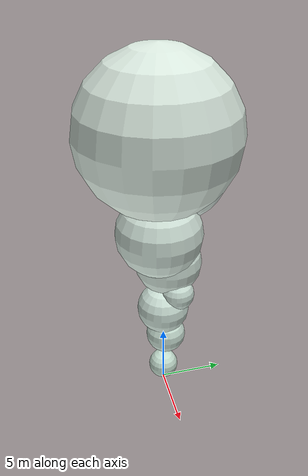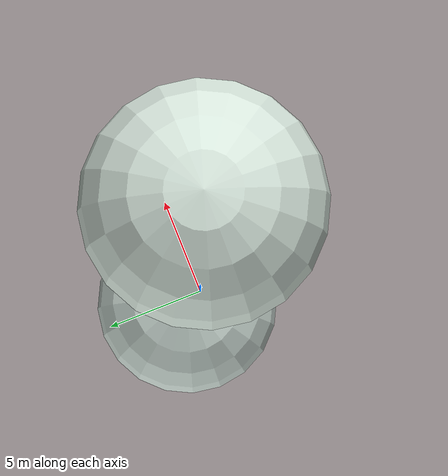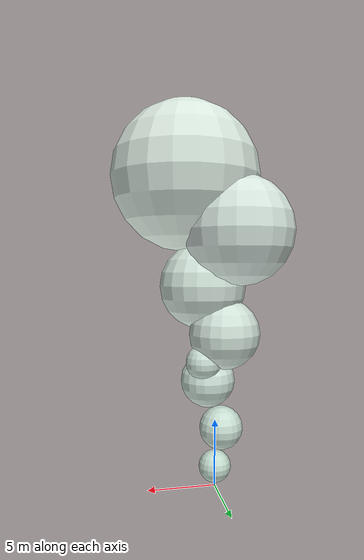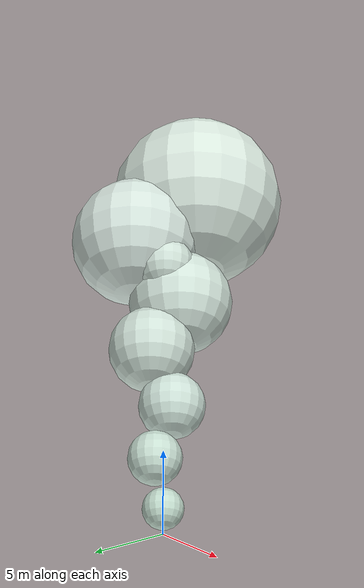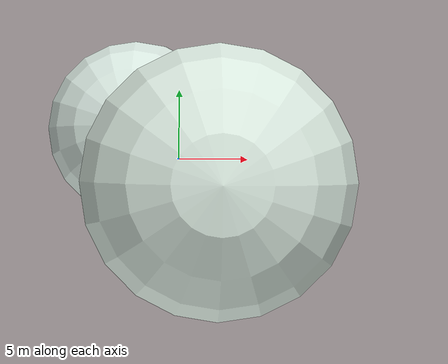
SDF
<?xml version="1.0" ?>
<sdf version="1.6">
  <model name="gas_plume">
    <static>true</static>
    <!-- Base link at origin -->
    <link name="plume_link">
      <pose>0 0 0 0 0 0</pose>

      <!-- Puff 0: base emission puff at flange level -->
      <visual name="puff0">
        <pose>0 0 1.5 0 0 0</pose>
        <geometry><sphere><radius>1.2</radius></sphere></geometry>
        <material>
          <ambient>0.82 0.90 0.86 1</ambient>
          <diffuse>0.78 0.88 0.82 1</diffuse>
          <emissive>0.20 0.32 0.24 1</emissive>
        </material>
      </visual>

      <!-- Puff 1: rising, slightly north -->
      <visual name="puff1">
        <pose>-0.4 0.3 4.5 0 0 0</pose>
        <geometry><sphere><radius>1.6</radius></sphere></geometry>
        <material>
          <ambient>0.84 0.91 0.87 1</ambient>
          <diffuse>0.80 0.89 0.84 1</diffuse>
          <emissive>0.18 0.28 0.21 1</emissive>
        </material>
      </visual>

      <!-- Puff 2: larger, slight east lean -->
      <visual name="puff2">
        <pose>0.5 -0.2 8.0 0 0 0</pose>
        <geometry><sphere><radius>2.0</radius></sphere></geometry>
        <material>
          <ambient>0.86 0.92 0.88 1</ambient>
          <diffuse>0.82 0.90 0.86 1</diffuse>
          <emissive>0.15 0.24 0.18 1</emissive>
        </material>
      </visual>

      <!-- Puff 3: billowing outward -->
      <visual name="puff3">
        <pose>-0.6 0.5 11.5 0 0 0</pose>
        <geometry><sphere><radius>2.6</radius></sphere></geometry>
        <material>
          <ambient>0.87 0.92 0.89 1</ambient>
          <diffuse>0.83 0.90 0.86 1</diffuse>
          <emissive>0.12 0.20 0.15 1</emissive>
        </material>
      </visual>

      <!-- Puff 4: large cloud mass above tank top -->
      <visual name="puff4">
        <pose>0.8 -0.6 15.0 0 0 0</pose>
        <geometry><sphere><radius>3.2</radius></sphere></geometry>
        <material>
          <ambient>0.88 0.93 0.90 1</ambient>
          <diffuse>0.84 0.91 0.87 1</diffuse>
          <emissive>0.10 0.16 0.12 1</emissive>
        </material>
      </visual>

      <!-- Puff 5: wide drift cloud, wind-blown north -->
      <visual name="puff5">
        <pose>-1.5 1.2 19.0 0 0 0</pose>
        <geometry><sphere><radius>4.0</radius></sphere></geometry>
        <material>
          <ambient>0.89 0.93 0.90 1</ambient>
          <diffuse>0.85 0.91 0.88 1</diffuse>
          <emissive>0.07 0.12 0.09 1</emissive>
        </material>
      </visual>

      <!-- Puff 6: far drift, very large, faint glow -->
      <visual name="puff6">
        <pose>2.0 -1.0 23.0 0 0 0</pose>
        <geometry><sphere><radius>5.5</radius></sphere></geometry>
        <material>
          <ambient>0.90 0.94 0.91 1</ambient>
          <diffuse>0.86 0.92 0.88 1</diffuse>
          <emissive>0.04 0.08 0.06 1</emissive>
        </material>
      </visual>

      <!-- Small accent: tight puff overlapping puff2 for texture -->
      <visual name="puff_accent1">
        <pose>1.0 0.8 9.5 0 0 0</pose>
        <geometry><sphere><radius>1.3</radius></sphere></geometry>
        <material>
          <ambient>0.85 0.91 0.87 1</ambient>
          <diffuse>0.81 0.89 0.85 1</diffuse>
          <emissive>0.16 0.26 0.19 1</emissive>
        </material>
      </visual>

      <!-- Small accent: overlapping puff4 for lumpy cloud look -->
      <visual name="puff_accent2">
        <pose>-1.2 -1.0 16.5 0 0 0</pose>
        <geometry><sphere><radius>1.8</radius></sphere></geometry>
        <material>
          <ambient>0.87 0.92 0.88 1</ambient>
          <diffuse>0.83 0.90 0.86 1</diffuse>
          <emissive>0.10 0.18 0.13 1</emissive>
        </material>
      </visual>
    </link>
  </model>
</sdf>
